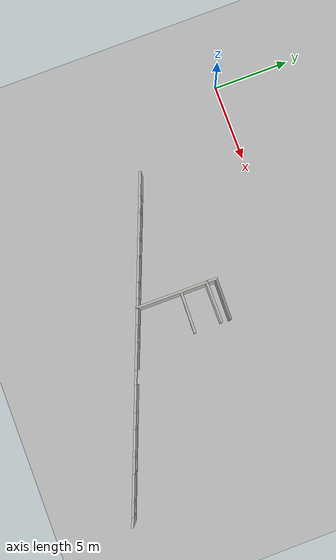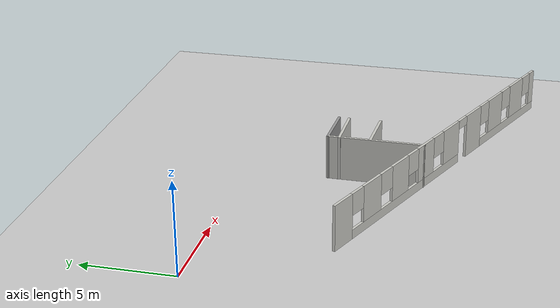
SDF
<sdf version="1.6">
 <world name="default">
  <model name="ground_plane">
   <static>1</static>
   <link name="link">
    <collision name="collision">
     <geometry><plane><normal>0 0 1</normal><size>100 100</size></plane></geometry>
     <surface><friction><ode><mu>100</mu><mu2>50</mu2></ode></friction></surface>
    </collision>
    <visual name="visual">
     <cast_shadows>0</cast_shadows>
     <geometry><plane><normal>0 0 1</normal><size>100 100</size></plane></geometry>
     <material>
      <script><uri>file://media/materials/scripts/gazebo.material</uri><name>Gazebo/Grey</name></script>
     </material>
    </visual>
   </link>
  </model>
  <model name="Erle Office">
   <link name="Wall_43">
    <pose>3.86583 -5.79896 0 0 0 -0.374453</pose>
    <visual name="Wall_43_Visual_0">
     <pose>-10.1624 0 1.25 0 -0 0</pose>
     <geometry><box><size>1.55263 0.15 2.5</size></box></geometry>
     <material>
      <script><uri>file://media/materials/scripts/gazebo.material</uri><name>Gazebo/CeilingTiled</name></script>
      <ambient>1 1 1 1</ambient>
      <diffuse>1 1 1 1</diffuse>
      <specular>0 0 0 1</specular>
      <emissive>0 0 0 1</emissive>
     </material>
    </visual>
    <visual name="Wall_43_Visual_1">
     <pose>3.20612 0 1.25 0 -0 0</pose>
     <geometry><box><size>1.69454 0.15 2.5</size></box></geometry>
     <material>
      <script><uri>file://media/materials/scripts/gazebo.material</uri><name>Gazebo/CeilingTiled</name></script>
      <ambient>1 1 1 1</ambient>
      <diffuse>1 1 1 1</diffuse>
      <specular>0 0 0 1</specular>
      <emissive>0 0 0 1</emissive>
     </material>
    </visual>
    <visual name="Wall_43_Visual_2">
     <pose>-3.96361 0 0.25 0 -0 0</pose>
     <geometry><box><size>10.8449 0.15 0.5</size></box></geometry>
     <material>
      <script><uri>file://media/materials/scripts/gazebo.material</uri><name>Gazebo/CeilingTiled</name></script>
      <ambient>1 1 1 1</ambient>
      <diffuse>1 1 1 1</diffuse>
      <specular>0 0 0 1</specular>
      <emissive>0 0 0 1</emissive>
     </material>
    </visual>
    <visual name="Wall_43_Visual_3">
     <pose>7.49605 0 0.25 0 -0 0</pose>
     <geometry><box><size>6.88531 0.15 0.5</size></box></geometry>
     <material>
      <script><uri>file://media/materials/scripts/gazebo.material</uri><name>Gazebo/CeilingTiled</name></script>
      <ambient>1 1 1 1</ambient>
      <diffuse>1 1 1 1</diffuse>
      <specular>0 0 0 1</specular>
      <emissive>0 0 0 1</emissive>
     </material>
    </visual>
    <visual name="Wall_43_Visual_4">
     <pose>-7.53154 0 1.5 0 -0 0</pose>
     <geometry><box><size>1.64771 0.15 2</size></box></geometry>
     <material>
      <script><uri>file://media/materials/scripts/gazebo.material</uri><name>Gazebo/CeilingTiled</name></script>
      <ambient>1 1 1 1</ambient>
      <diffuse>1 1 1 1</diffuse>
      <specular>0 0 0 1</specular>
      <emissive>0 0 0 1</emissive>
     </material>
    </visual>
    <visual name="Wall_43_Visual_5">
     <pose>-4.80033 0 1.5 0 -0 0</pose>
     <geometry><box><size>1.63169 0.15 2</size></box></geometry>
     <material>
      <script><uri>file://media/materials/scripts/gazebo.material</uri><name>Gazebo/CeilingTiled</name></script>
      <ambient>1 1 1 1</ambient>
      <diffuse>1 1 1 1</diffuse>
      <specular>0 0 0 1</specular>
      <emissive>0 0 0 1</emissive>
     </material>
    </visual>
    <visual name="Wall_43_Visual_6">
     <pose>-2.15402 0 1.5 0 -0 0</pose>
     <geometry><box><size>1.65041 0.15 2</size></box></geometry>
     <material>
      <script><uri>file://media/materials/scripts/gazebo.material</uri><name>Gazebo/CeilingTiled</name></script>
      <ambient>1 1 1 1</ambient>
      <diffuse>1 1 1 1</diffuse>
      <specular>0 0 0 1</specular>
      <emissive>0 0 0 1</emissive>
     </material>
    </visual>
    <visual name="Wall_43_Visual_7">
     <pose>0.599732 0 1.5 0 -0 0</pose>
     <geometry><box><size>1.71823 0.15 2</size></box></geometry>
     <material>
      <script><uri>file://media/materials/scripts/gazebo.material</uri><name>Gazebo/CeilingTiled</name></script>
      <ambient>1 1 1 1</ambient>
      <diffuse>1 1 1 1</diffuse>
      <specular>0 0 0 1</specular>
      <emissive>0 0 0 1</emissive>
     </material>
    </visual>
    <visual name="Wall_43_Visual_8">
     <pose>0.599732 0 1.5 0 -0 0</pose>
     <geometry><box><size>1.71823 0.15 2</size></box></geometry>
     <material>
      <script><uri>file://media/materials/scripts/gazebo.material</uri><name>Gazebo/CeilingTiled</name></script>
      <ambient>1 1 1 1</ambient>
      <diffuse>1 1 1 1</diffuse>
      <specular>0 0 0 1</specular>
      <emissive>0 0 0 1</emissive>
     </material>
    </visual>
    <visual name="Wall_43_Visual_9">
     <pose>5.8785 0 1.5 0 -0 0</pose>
     <geometry><box><size>1.66913 0.15 2</size></box></geometry>
     <material>
      <script><uri>file://media/materials/scripts/gazebo.material</uri><name>Gazebo/CeilingTiled</name></script>
      <ambient>1 1 1 1</ambient>
      <diffuse>1 1 1 1</diffuse>
      <specular>0 0 0 1</specular>
      <emissive>0 0 0 1</emissive>
     </material>
    </visual>
    <visual name="Wall_43_Visual_10">
     <pose>8.58432 0 1.5 0 -0 0</pose>
     <geometry><box><size>1.67182 0.15 2</size></box></geometry>
     <material>
      <script><uri>file://media/materials/scripts/gazebo.material</uri><name>Gazebo/CeilingTiled</name></script>
      <ambient>1 1 1 1</ambient>
      <diffuse>1 1 1 1</diffuse>
      <specular>0 0 0 1</specular>
      <emissive>0 0 0 1</emissive>
     </material>
    </visual>
    <visual name="Wall_43_Visual_11">
     <pose>10.645 0 1.5 0 -0 0</pose>
     <geometry><box><size>0.58743 0.15 2</size></box></geometry>
     <material>
      <script><uri>file://media/materials/scripts/gazebo.material</uri><name>Gazebo/CeilingTiled</name></script>
      <ambient>1 1 1 1</ambient>
      <diffuse>1 1 1 1</diffuse>
      <specular>0 0 0 1</specular>
      <emissive>0 0 0 1</emissive>
     </material>
    </visual>
    <visual name="Wall_43_Visual_13">
     <pose>4.54867 0 1.9 0 -0 0</pose>
     <geometry><box><size>0.990549 0.15 1.2</size></box></geometry>
     <material>
      <script><uri>file://media/materials/scripts/gazebo.material</uri><name>Gazebo/CeilingTiled</name></script>
      <ambient>1 1 1 1</ambient>
      <diffuse>1 1 1 1</diffuse>
      <specular>0 0 0 1</specular>
      <emissive>0 0 0 1</emissive>
     </material>
    </visual>
    <visual name="Wall_43_Visual_12">
     <pose>-8.87074 0 1.9 0 -0 0</pose>
     <geometry><box><size>1.03068 0.15 1.2</size></box></geometry>
     <material>
      <script><uri>file://media/materials/scripts/gazebo.material</uri><name>Gazebo/CeilingTiled</name></script>
      <ambient>1 1 1 1</ambient>
      <diffuse>1 1 1 1</diffuse>
      <specular>0 0 0 1</specular>
      <emissive>0 0 0 1</emissive>
     </material>
    </visual>
    <visual name="Wall_43_Visual_14">
     <pose>-6.16193 0 1.9 0 -0 0</pose>
     <geometry><box><size>1.0915 0.15 1.2</size></box></geometry>
     <material>
      <script><uri>file://media/materials/scripts/gazebo.material</uri><name>Gazebo/CeilingTiled</name></script>
      <ambient>1 1 1 1</ambient>
      <diffuse>1 1 1 1</diffuse>
      <specular>0 0 0 1</specular>
      <emissive>0 0 0 1</emissive>
     </material>
    </visual>
    <visual name="Wall_43_Visual_15">
     <pose>-3.48186 0 1.9 0 -0 0</pose>
     <geometry><box><size>1.00526 0.15 1.2</size></box></geometry>
     <material>
      <script><uri>file://media/materials/scripts/gazebo.material</uri><name>Gazebo/CeilingTiled</name></script>
      <ambient>1 1 1 1</ambient>
      <diffuse>1 1 1 1</diffuse>
      <specular>0 0 0 1</specular>
      <emissive>0 0 0 1</emissive>
     </material>
    </visual>
    <visual name="Wall_43_Visual_16">
     <pose>-0.794103 0 1.9 0 -0 0</pose>
     <geometry><box><size>1.06943 0.15 1.2</size></box></geometry>
     <material>
      <script><uri>file://media/materials/scripts/gazebo.material</uri><name>Gazebo/CeilingTiled</name></script>
      <ambient>1 1 1 1</ambient>
      <diffuse>1 1 1 1</diffuse>
      <specular>0 0 0 1</specular>
      <emissive>0 0 0 1</emissive>
     </material>
    </visual>
    <visual name="Wall_43_Visual_17">
     <pose>7.23074 0 1.9 0 -0 0</pose>
     <geometry><box><size>1.03535 0.15 1.2</size></box></geometry>
     <material>
      <script><uri>file://media/materials/scripts/gazebo.material</uri><name>Gazebo/CeilingTiled</name></script>
      <ambient>1 1 1 1</ambient>
      <diffuse>1 1 1 1</diffuse>
      <specular>0 0 0 1</specular>
      <emissive>0 0 0 1</emissive>
     </material>
    </visual>
    <visual name="Wall_43_Visual_18">
     <pose>9.88575 0 1.9 0 -0 0</pose>
     <geometry><box><size>0.931039 0.15 1.2</size></box></geometry>
     <material>
      <script><uri>file://media/materials/scripts/gazebo.material</uri><name>Gazebo/CeilingTiled</name></script>
      <ambient>1 1 1 1</ambient>
      <diffuse>1 1 1 1</diffuse>
      <specular>0 0 0 1</specular>
      <emissive>0 0 0 1</emissive>
     </material>
    </visual>
    <visual name="Wall_43_Visual_19">
     <pose>1.90885 0 2.25 0 -0 0</pose>
     <geometry><box><size>0.9 0.15 0.5</size></box></geometry>
     <material>
      <script><uri>file://media/materials/scripts/gazebo.material</uri><name>Gazebo/CeilingTiled</name></script>
      <ambient>1 1 1 1</ambient>
      <diffuse>1 1 1 1</diffuse>
      <specular>0 0 0 1</specular>
      <emissive>0 0 0 1</emissive>
     </material>
    </visual>
    <visual name="Wall_43_Visual_20">
     <pose>1.90885 0 2.25 0 -0 0</pose>
     <geometry><box><size>0.9 0.15 0.5</size></box></geometry>
     <material>
      <script><uri>file://media/materials/scripts/gazebo.material</uri><name>Gazebo/CeilingTiled</name></script>
      <ambient>1 1 1 1</ambient>
      <diffuse>1 1 1 1</diffuse>
      <specular>0 0 0 1</specular>
      <emissive>0 0 0 1</emissive>
     </material>
    </visual>
    <collision name="Wall_43_Collision_0">
     <pose>-10.1624 0 1.25 0 -0 0</pose>
     <geometry><box><size>1.55263 0.15 2.5</size></box></geometry>
     <surface>
      <friction>
       <ode><mu>1</mu><mu2>1</mu2><fdir1>0 0 0</fdir1><slip1>0</slip1><slip2>0</slip2></ode>
       <torsional>
        <coefficient>1</coefficient>
        <patch_radius>0</patch_radius>
        <surface_radius>0</surface_radius>
        <use_patch_radius>1</use_patch_radius>
        <ode><slip>0</slip></ode>
       </torsional>
      </friction>
      <bounce><restitution_coefficient>0</restitution_coefficient><threshold>1e+06</threshold></bounce>
      <contact>
       <collide_without_contact>0</collide_without_contact>
       <collide_without_contact_bitmask>1</collide_without_contact_bitmask>
       <collide_bitmask>1</collide_bitmask>
       <ode>
        <soft_cfm>0</soft_cfm>
        <soft_erp>0.2</soft_erp>
        <kp>1e+13</kp>
        <kd>1</kd>
        <max_vel>0.01</max_vel>
        <min_depth>0</min_depth>
       </ode>
       <bullet>
        <split_impulse>1</split_impulse>
        <split_impulse_penetration_threshold>-0.01</split_impulse_penetration_threshold>
        <soft_cfm>0</soft_cfm>
        <soft_erp>0.2</soft_erp>
        <kp>1e+13</kp>
        <kd>1</kd>
       </bullet>
      </contact>
     </surface>
    </collision>
    <collision name="Wall_43_Collision_2">
     <pose>-3.96361 0 0.25 0 -0 0</pose>
     <geometry><box><size>10.8449 0.15 0.5</size></box></geometry>
     <surface>
      <friction>
       <ode><mu>1</mu><mu2>1</mu2><fdir1>0 0 0</fdir1><slip1>0</slip1><slip2>0</slip2></ode>
       <torsional>
        <coefficient>1</coefficient>
        <patch_radius>0</patch_radius>
        <surface_radius>0</surface_radius>
        <use_patch_radius>1</use_patch_radius>
        <ode><slip>0</slip></ode>
       </torsional>
      </friction>
      <bounce><restitution_coefficient>0</restitution_coefficient><threshold>1e+06</threshold></bounce>
      <contact>
       <collide_without_contact>0</collide_without_contact>
       <collide_without_contact_bitmask>1</collide_without_contact_bitmask>
       <collide_bitmask>1</collide_bitmask>
       <ode>
        <soft_cfm>0</soft_cfm>
        <soft_erp>0.2</soft_erp>
        <kp>1e+13</kp>
        <kd>1</kd>
        <max_vel>0.01</max_vel>
        <min_depth>0</min_depth>
       </ode>
       <bullet>
        <split_impulse>1</split_impulse>
        <split_impulse_penetration_threshold>-0.01</split_impulse_penetration_threshold>
        <soft_cfm>0</soft_cfm>
        <soft_erp>0.2</soft_erp>
        <kp>1e+13</kp>
        <kd>1</kd>
       </bullet>
      </contact>
     </surface>
    </collision>
    <collision name="Wall_43_Collision_1">
     <pose>3.20612 0 1.25 0 -0 0</pose>
     <geometry><box><size>1.69454 0.15 2.5</size></box></geometry>
     <surface>
      <friction>
       <ode><mu>1</mu><mu2>1</mu2><fdir1>0 0 0</fdir1><slip1>0</slip1><slip2>0</slip2></ode>
       <torsional>
        <coefficient>1</coefficient>
        <patch_radius>0</patch_radius>
        <surface_radius>0</surface_radius>
        <use_patch_radius>1</use_patch_radius>
        <ode><slip>0</slip></ode>
       </torsional>
      </friction>
      <bounce><restitution_coefficient>0</restitution_coefficient><threshold>1e+06</threshold></bounce>
      <contact>
       <collide_without_contact>0</collide_without_contact>
       <collide_without_contact_bitmask>1</collide_without_contact_bitmask>
       <collide_bitmask>1</collide_bitmask>
       <ode>
        <soft_cfm>0</soft_cfm>
        <soft_erp>0.2</soft_erp>
        <kp>1e+13</kp>
        <kd>1</kd>
        <max_vel>0.01</max_vel>
        <min_depth>0</min_depth>
       </ode>
       <bullet>
        <split_impulse>1</split_impulse>
        <split_impulse_penetration_threshold>-0.01</split_impulse_penetration_threshold>
        <soft_cfm>0</soft_cfm>
        <soft_erp>0.2</soft_erp>
        <kp>1e+13</kp>
        <kd>1</kd>
       </bullet>
      </contact>
     </surface>
    </collision>
    <collision name="Wall_43_Collision_3">
     <pose>7.49605 0 0.25 0 -0 0</pose>
     <geometry><box><size>6.88531 0.15 0.5</size></box></geometry>
     <surface>
      <friction>
       <ode><mu>1</mu><mu2>1</mu2><fdir1>0 0 0</fdir1><slip1>0</slip1><slip2>0</slip2></ode>
       <torsional>
        <coefficient>1</coefficient>
        <patch_radius>0</patch_radius>
        <surface_radius>0</surface_radius>
        <use_patch_radius>1</use_patch_radius>
        <ode><slip>0</slip></ode>
       </torsional>
      </friction>
      <bounce><restitution_coefficient>0</restitution_coefficient><threshold>1e+06</threshold></bounce>
      <contact>
       <collide_without_contact>0</collide_without_contact>
       <collide_without_contact_bitmask>1</collide_without_contact_bitmask>
       <collide_bitmask>1</collide_bitmask>
       <ode>
        <soft_cfm>0</soft_cfm>
        <soft_erp>0.2</soft_erp>
        <kp>1e+13</kp>
        <kd>1</kd>
        <max_vel>0.01</max_vel>
        <min_depth>0</min_depth>
       </ode>
       <bullet>
        <split_impulse>1</split_impulse>
        <split_impulse_penetration_threshold>-0.01</split_impulse_penetration_threshold>
        <soft_cfm>0</soft_cfm>
        <soft_erp>0.2</soft_erp>
        <kp>1e+13</kp>
        <kd>1</kd>
       </bullet>
      </contact>
     </surface>
    </collision>
    <collision name="Wall_43_Collision_5">
     <pose>-4.80033 0 1.5 0 -0 0</pose>
     <geometry><box><size>1.63169 0.15 2</size></box></geometry>
     <surface>
      <friction>
       <ode><mu>1</mu><mu2>1</mu2><fdir1>0 0 0</fdir1><slip1>0</slip1><slip2>0</slip2></ode>
       <torsional>
        <coefficient>1</coefficient>
        <patch_radius>0</patch_radius>
        <surface_radius>0</surface_radius>
        <use_patch_radius>1</use_patch_radius>
        <ode><slip>0</slip></ode>
       </torsional>
      </friction>
      <bounce><restitution_coefficient>0</restitution_coefficient><threshold>1e+06</threshold></bounce>
      <contact>
       <collide_without_contact>0</collide_without_contact>
       <collide_without_contact_bitmask>1</collide_without_contact_bitmask>
       <collide_bitmask>1</collide_bitmask>
       <ode>
        <soft_cfm>0</soft_cfm>
        <soft_erp>0.2</soft_erp>
        <kp>1e+13</kp>
        <kd>1</kd>
        <max_vel>0.01</max_vel>
        <min_depth>0</min_depth>
       </ode>
       <bullet>
        <split_impulse>1</split_impulse>
        <split_impulse_penetration_threshold>-0.01</split_impulse_penetration_threshold>
        <soft_cfm>0</soft_cfm>
        <soft_erp>0.2</soft_erp>
        <kp>1e+13</kp>
        <kd>1</kd>
       </bullet>
      </contact>
     </surface>
    </collision>
    <collision name="Wall_43_Collision_8">
     <pose>0.599732 0 1.5 0 -0 0</pose>
     <geometry><box><size>1.71823 0.15 2</size></box></geometry>
     <surface>
      <friction>
       <ode><mu>1</mu><mu2>1</mu2><fdir1>0 0 0</fdir1><slip1>0</slip1><slip2>0</slip2></ode>
       <torsional>
        <coefficient>1</coefficient>
        <patch_radius>0</patch_radius>
        <surface_radius>0</surface_radius>
        <use_patch_radius>1</use_patch_radius>
        <ode><slip>0</slip></ode>
       </torsional>
      </friction>
      <bounce><restitution_coefficient>0</restitution_coefficient><threshold>1e+06</threshold></bounce>
      <contact>
       <collide_without_contact>0</collide_without_contact>
       <collide_without_contact_bitmask>1</collide_without_contact_bitmask>
       <collide_bitmask>1</collide_bitmask>
       <ode>
        <soft_cfm>0</soft_cfm>
        <soft_erp>0.2</soft_erp>
        <kp>1e+13</kp>
        <kd>1</kd>
        <max_vel>0.01</max_vel>
        <min_depth>0</min_depth>
       </ode>
       <bullet>
        <split_impulse>1</split_impulse>
        <split_impulse_penetration_threshold>-0.01</split_impulse_penetration_threshold>
        <soft_cfm>0</soft_cfm>
        <soft_erp>0.2</soft_erp>
        <kp>1e+13</kp>
        <kd>1</kd>
       </bullet>
      </contact>
     </surface>
    </collision>
    <collision name="Wall_43_Collision_4">
     <pose>-7.53154 0 1.5 0 -0 0</pose>
     <geometry><box><size>1.64771 0.15 2</size></box></geometry>
     <surface>
      <friction>
       <ode><mu>1</mu><mu2>1</mu2><fdir1>0 0 0</fdir1><slip1>0</slip1><slip2>0</slip2></ode>
       <torsional>
        <coefficient>1</coefficient>
        <patch_radius>0</patch_radius>
        <surface_radius>0</surface_radius>
        <use_patch_radius>1</use_patch_radius>
        <ode><slip>0</slip></ode>
       </torsional>
      </friction>
      <bounce><restitution_coefficient>0</restitution_coefficient><threshold>1e+06</threshold></bounce>
      <contact>
       <collide_without_contact>0</collide_without_contact>
       <collide_without_contact_bitmask>1</collide_without_contact_bitmask>
       <collide_bitmask>1</collide_bitmask>
       <ode>
        <soft_cfm>0</soft_cfm>
        <soft_erp>0.2</soft_erp>
        <kp>1e+13</kp>
        <kd>1</kd>
        <max_vel>0.01</max_vel>
        <min_depth>0</min_depth>
       </ode>
       <bullet>
        <split_impulse>1</split_impulse>
        <split_impulse_penetration_threshold>-0.01</split_impulse_penetration_threshold>
        <soft_cfm>0</soft_cfm>
        <soft_erp>0.2</soft_erp>
        <kp>1e+13</kp>
        <kd>1</kd>
       </bullet>
      </contact>
     </surface>
    </collision>
    <collision name="Wall_43_Collision_10">
     <pose>8.58432 0 1.5 0 -0 0</pose>
     <geometry><box><size>1.67182 0.15 2</size></box></geometry>
     <surface>
      <friction>
       <ode><mu>1</mu><mu2>1</mu2><fdir1>0 0 0</fdir1><slip1>0</slip1><slip2>0</slip2></ode>
       <torsional>
        <coefficient>1</coefficient>
        <patch_radius>0</patch_radius>
        <surface_radius>0</surface_radius>
        <use_patch_radius>1</use_patch_radius>
        <ode><slip>0</slip></ode>
       </torsional>
      </friction>
      <bounce><restitution_coefficient>0</restitution_coefficient><threshold>1e+06</threshold></bounce>
      <contact>
       <collide_without_contact>0</collide_without_contact>
       <collide_without_contact_bitmask>1</collide_without_contact_bitmask>
       <collide_bitmask>1</collide_bitmask>
       <ode>
        <soft_cfm>0</soft_cfm>
        <soft_erp>0.2</soft_erp>
        <kp>1e+13</kp>
        <kd>1</kd>
        <max_vel>0.01</max_vel>
        <min_depth>0</min_depth>
       </ode>
       <bullet>
        <split_impulse>1</split_impulse>
        <split_impulse_penetration_threshold>-0.01</split_impulse_penetration_threshold>
        <soft_cfm>0</soft_cfm>
        <soft_erp>0.2</soft_erp>
        <kp>1e+13</kp>
        <kd>1</kd>
       </bullet>
      </contact>
     </surface>
    </collision>
    <collision name="Wall_43_Collision_6">
     <pose>-2.15402 0 1.5 0 -0 0</pose>
     <geometry><box><size>1.65041 0.15 2</size></box></geometry>
     <surface>
      <friction>
       <ode><mu>1</mu><mu2>1</mu2><fdir1>0 0 0</fdir1><slip1>0</slip1><slip2>0</slip2></ode>
       <torsional>
        <coefficient>1</coefficient>
        <patch_radius>0</patch_radius>
        <surface_radius>0</surface_radius>
        <use_patch_radius>1</use_patch_radius>
        <ode><slip>0</slip></ode>
       </torsional>
      </friction>
      <bounce><restitution_coefficient>0</restitution_coefficient><threshold>1e+06</threshold></bounce>
      <contact>
       <collide_without_contact>0</collide_without_contact>
       <collide_without_contact_bitmask>1</collide_without_contact_bitmask>
       <collide_bitmask>1</collide_bitmask>
       <ode>
        <soft_cfm>0</soft_cfm>
        <soft_erp>0.2</soft_erp>
        <kp>1e+13</kp>
        <kd>1</kd>
        <max_vel>0.01</max_vel>
        <min_depth>0</min_depth>
       </ode>
       <bullet>
        <split_impulse>1</split_impulse>
        <split_impulse_penetration_threshold>-0.01</split_impulse_penetration_threshold>
        <soft_cfm>0</soft_cfm>
        <soft_erp>0.2</soft_erp>
        <kp>1e+13</kp>
        <kd>1</kd>
       </bullet>
      </contact>
     </surface>
    </collision>
    <collision name="Wall_43_Collision_7">
     <pose>0.599732 0 1.5 0 -0 0</pose>
     <geometry><box><size>1.71823 0.15 2</size></box></geometry>
     <surface>
      <friction>
       <ode><mu>1</mu><mu2>1</mu2><fdir1>0 0 0</fdir1><slip1>0</slip1><slip2>0</slip2></ode>
       <torsional>
        <coefficient>1</coefficient>
        <patch_radius>0</patch_radius>
        <surface_radius>0</surface_radius>
        <use_patch_radius>1</use_patch_radius>
        <ode><slip>0</slip></ode>
       </torsional>
      </friction>
      <bounce><restitution_coefficient>0</restitution_coefficient><threshold>1e+06</threshold></bounce>
      <contact>
       <collide_without_contact>0</collide_without_contact>
       <collide_without_contact_bitmask>1</collide_without_contact_bitmask>
       <collide_bitmask>1</collide_bitmask>
       <ode>
        <soft_cfm>0</soft_cfm>
        <soft_erp>0.2</soft_erp>
        <kp>1e+13</kp>
        <kd>1</kd>
        <max_vel>0.01</max_vel>
        <min_depth>0</min_depth>
       </ode>
       <bullet>
        <split_impulse>1</split_impulse>
        <split_impulse_penetration_threshold>-0.01</split_impulse_penetration_threshold>
        <soft_cfm>0</soft_cfm>
        <soft_erp>0.2</soft_erp>
        <kp>1e+13</kp>
        <kd>1</kd>
       </bullet>
      </contact>
     </surface>
    </collision>
    <collision name="Wall_43_Collision_11">
     <pose>10.645 0 1.5 0 -0 0</pose>
     <geometry><box><size>0.58743 0.15 2</size></box></geometry>
     <surface>
      <friction>
       <ode><mu>1</mu><mu2>1</mu2><fdir1>0 0 0</fdir1><slip1>0</slip1><slip2>0</slip2></ode>
       <torsional>
        <coefficient>1</coefficient>
        <patch_radius>0</patch_radius>
        <surface_radius>0</surface_radius>
        <use_patch_radius>1</use_patch_radius>
        <ode><slip>0</slip></ode>
       </torsional>
      </friction>
      <bounce><restitution_coefficient>0</restitution_coefficient><threshold>1e+06</threshold></bounce>
      <contact>
       <collide_without_contact>0</collide_without_contact>
       <collide_without_contact_bitmask>1</collide_without_contact_bitmask>
       <collide_bitmask>1</collide_bitmask>
       <ode>
        <soft_cfm>0</soft_cfm>
        <soft_erp>0.2</soft_erp>
        <kp>1e+13</kp>
        <kd>1</kd>
        <max_vel>0.01</max_vel>
        <min_depth>0</min_depth>
       </ode>
       <bullet>
        <split_impulse>1</split_impulse>
        <split_impulse_penetration_threshold>-0.01</split_impulse_penetration_threshold>
        <soft_cfm>0</soft_cfm>
        <soft_erp>0.2</soft_erp>
        <kp>1e+13</kp>
        <kd>1</kd>
       </bullet>
      </contact>
     </surface>
    </collision>
    <collision name="Wall_43_Collision_12">
     <pose>-8.87074 0 1.9 0 -0 0</pose>
     <geometry><box><size>1.03068 0.15 1.2</size></box></geometry>
     <surface>
      <friction>
       <ode><mu>1</mu><mu2>1</mu2><fdir1>0 0 0</fdir1><slip1>0</slip1><slip2>0</slip2></ode>
       <torsional>
        <coefficient>1</coefficient>
        <patch_radius>0</patch_radius>
        <surface_radius>0</surface_radius>
        <use_patch_radius>1</use_patch_radius>
        <ode><slip>0</slip></ode>
       </torsional>
      </friction>
      <bounce><restitution_coefficient>0</restitution_coefficient><threshold>1e+06</threshold></bounce>
      <contact>
       <collide_without_contact>0</collide_without_contact>
       <collide_without_contact_bitmask>1</collide_without_contact_bitmask>
       <collide_bitmask>1</collide_bitmask>
       <ode>
        <soft_cfm>0</soft_cfm>
        <soft_erp>0.2</soft_erp>
        <kp>1e+13</kp>
        <kd>1</kd>
        <max_vel>0.01</max_vel>
        <min_depth>0</min_depth>
       </ode>
       <bullet>
        <split_impulse>1</split_impulse>
        <split_impulse_penetration_threshold>-0.01</split_impulse_penetration_threshold>
        <soft_cfm>0</soft_cfm>
        <soft_erp>0.2</soft_erp>
        <kp>1e+13</kp>
        <kd>1</kd>
       </bullet>
      </contact>
     </surface>
    </collision>
    <collision name="Wall_43_Collision_9">
     <pose>5.8785 0 1.5 0 -0 0</pose>
     <geometry><box><size>1.66913 0.15 2</size></box></geometry>
     <surface>
      <friction>
       <ode><mu>1</mu><mu2>1</mu2><fdir1>0 0 0</fdir1><slip1>0</slip1><slip2>0</slip2></ode>
       <torsional>
        <coefficient>1</coefficient>
        <patch_radius>0</patch_radius>
        <surface_radius>0</surface_radius>
        <use_patch_radius>1</use_patch_radius>
        <ode><slip>0</slip></ode>
       </torsional>
      </friction>
      <bounce><restitution_coefficient>0</restitution_coefficient><threshold>1e+06</threshold></bounce>
      <contact>
       <collide_without_contact>0</collide_without_contact>
       <collide_without_contact_bitmask>1</collide_without_contact_bitmask>
       <collide_bitmask>1</collide_bitmask>
       <ode>
        <soft_cfm>0</soft_cfm>
        <soft_erp>0.2</soft_erp>
        <kp>1e+13</kp>
        <kd>1</kd>
        <max_vel>0.01</max_vel>
        <min_depth>0</min_depth>
       </ode>
       <bullet>
        <split_impulse>1</split_impulse>
        <split_impulse_penetration_threshold>-0.01</split_impulse_penetration_threshold>
        <soft_cfm>0</soft_cfm>
        <soft_erp>0.2</soft_erp>
        <kp>1e+13</kp>
        <kd>1</kd>
       </bullet>
      </contact>
     </surface>
    </collision>
    <collision name="Wall_43_Collision_13">
     <pose>4.54867 0 1.9 0 -0 0</pose>
     <geometry><box><size>0.990549 0.15 1.2</size></box></geometry>
     <surface>
      <friction>
       <ode><mu>1</mu><mu2>1</mu2><fdir1>0 0 0</fdir1><slip1>0</slip1><slip2>0</slip2></ode>
       <torsional>
        <coefficient>1</coefficient>
        <patch_radius>0</patch_radius>
        <surface_radius>0</surface_radius>
        <use_patch_radius>1</use_patch_radius>
        <ode><slip>0</slip></ode>
       </torsional>
      </friction>
      <bounce><restitution_coefficient>0</restitution_coefficient><threshold>1e+06</threshold></bounce>
      <contact>
       <collide_without_contact>0</collide_without_contact>
       <collide_without_contact_bitmask>1</collide_without_contact_bitmask>
       <collide_bitmask>1</collide_bitmask>
       <ode>
        <soft_cfm>0</soft_cfm>
        <soft_erp>0.2</soft_erp>
        <kp>1e+13</kp>
        <kd>1</kd>
        <max_vel>0.01</max_vel>
        <min_depth>0</min_depth>
       </ode>
       <bullet>
        <split_impulse>1</split_impulse>
        <split_impulse_penetration_threshold>-0.01</split_impulse_penetration_threshold>
        <soft_cfm>0</soft_cfm>
        <soft_erp>0.2</soft_erp>
        <kp>1e+13</kp>
        <kd>1</kd>
       </bullet>
      </contact>
     </surface>
    </collision>
    <collision name="Wall_43_Collision_14">
     <pose>-6.16193 0 1.9 0 -0 0</pose>
     <geometry><box><size>1.0915 0.15 1.2</size></box></geometry>
     <surface>
      <friction>
       <ode><mu>1</mu><mu2>1</mu2><fdir1>0 0 0</fdir1><slip1>0</slip1><slip2>0</slip2></ode>
       <torsional>
        <coefficient>1</coefficient>
        <patch_radius>0</patch_radius>
        <surface_radius>0</surface_radius>
        <use_patch_radius>1</use_patch_radius>
        <ode><slip>0</slip></ode>
       </torsional>
      </friction>
      <bounce><restitution_coefficient>0</restitution_coefficient><threshold>1e+06</threshold></bounce>
      <contact>
       <collide_without_contact>0</collide_without_contact>
       <collide_without_contact_bitmask>1</collide_without_contact_bitmask>
       <collide_bitmask>1</collide_bitmask>
       <ode>
        <soft_cfm>0</soft_cfm>
        <soft_erp>0.2</soft_erp>
        <kp>1e+13</kp>
        <kd>1</kd>
        <max_vel>0.01</max_vel>
        <min_depth>0</min_depth>
       </ode>
       <bullet>
        <split_impulse>1</split_impulse>
        <split_impulse_penetration_threshold>-0.01</split_impulse_penetration_threshold>
        <soft_cfm>0</soft_cfm>
        <soft_erp>0.2</soft_erp>
        <kp>1e+13</kp>
        <kd>1</kd>
       </bullet>
      </contact>
     </surface>
    </collision>
    <collision name="Wall_43_Collision_15">
     <pose>-3.48186 0 1.9 0 -0 0</pose>
     <geometry><box><size>1.00526 0.15 1.2</size></box></geometry>
     <surface>
      <friction>
       <ode><mu>1</mu><mu2>1</mu2><fdir1>0 0 0</fdir1><slip1>0</slip1><slip2>0</slip2></ode>
       <torsional>
        <coefficient>1</coefficient>
        <patch_radius>0</patch_radius>
        <surface_radius>0</surface_radius>
        <use_patch_radius>1</use_patch_radius>
        <ode><slip>0</slip></ode>
       </torsional>
      </friction>
      <bounce><restitution_coefficient>0</restitution_coefficient><threshold>1e+06</threshold></bounce>
      <contact>
       <collide_without_contact>0</collide_without_contact>
       <collide_without_contact_bitmask>1</collide_without_contact_bitmask>
       <collide_bitmask>1</collide_bitmask>
       <ode>
        <soft_cfm>0</soft_cfm>
        <soft_erp>0.2</soft_erp>
        <kp>1e+13</kp>
        <kd>1</kd>
        <max_vel>0.01</max_vel>
        <min_depth>0</min_depth>
       </ode>
       <bullet>
        <split_impulse>1</split_impulse>
        <split_impulse_penetration_threshold>-0.01</split_impulse_penetration_threshold>
        <soft_cfm>0</soft_cfm>
        <soft_erp>0.2</soft_erp>
        <kp>1e+13</kp>
        <kd>1</kd>
       </bullet>
      </contact>
     </surface>
    </collision>
    <collision name="Wall_43_Collision_16">
     <pose>-0.794103 0 1.9 0 -0 0</pose>
     <geometry><box><size>1.06943 0.15 1.2</size></box></geometry>
     <surface>
      <friction>
       <ode><mu>1</mu><mu2>1</mu2><fdir1>0 0 0</fdir1><slip1>0</slip1><slip2>0</slip2></ode>
       <torsional>
        <coefficient>1</coefficient>
        <patch_radius>0</patch_radius>
        <surface_radius>0</surface_radius>
        <use_patch_radius>1</use_patch_radius>
        <ode><slip>0</slip></ode>
       </torsional>
      </friction>
      <bounce><restitution_coefficient>0</restitution_coefficient><threshold>1e+06</threshold></bounce>
      <contact>
       <collide_without_contact>0</collide_without_contact>
       <collide_without_contact_bitmask>1</collide_without_contact_bitmask>
       <collide_bitmask>1</collide_bitmask>
       <ode>
        <soft_cfm>0</soft_cfm>
        <soft_erp>0.2</soft_erp>
        <kp>1e+13</kp>
        <kd>1</kd>
        <max_vel>0.01</max_vel>
        <min_depth>0</min_depth>
       </ode>
       <bullet>
        <split_impulse>1</split_impulse>
        <split_impulse_penetration_threshold>-0.01</split_impulse_penetration_threshold>
        <soft_cfm>0</soft_cfm>
        <soft_erp>0.2</soft_erp>
        <kp>1e+13</kp>
        <kd>1</kd>
       </bullet>
      </contact>
     </surface>
    </collision>
    <collision name="Wall_43_Collision_18">
     <pose>9.88575 0 1.9 0 -0 0</pose>
     <geometry><box><size>0.931039 0.15 1.2</size></box></geometry>
     <surface>
      <friction>
       <ode><mu>1</mu><mu2>1</mu2><fdir1>0 0 0</fdir1><slip1>0</slip1><slip2>0</slip2></ode>
       <torsional>
        <coefficient>1</coefficient>
        <patch_radius>0</patch_radius>
        <surface_radius>0</surface_radius>
        <use_patch_radius>1</use_patch_radius>
        <ode><slip>0</slip></ode>
       </torsional>
      </friction>
      <bounce><restitution_coefficient>0</restitution_coefficient><threshold>1e+06</threshold></bounce>
      <contact>
       <collide_without_contact>0</collide_without_contact>
       <collide_without_contact_bitmask>1</collide_without_contact_bitmask>
       <collide_bitmask>1</collide_bitmask>
       <ode>
        <soft_cfm>0</soft_cfm>
        <soft_erp>0.2</soft_erp>
        <kp>1e+13</kp>
        <kd>1</kd>
        <max_vel>0.01</max_vel>
        <min_depth>0</min_depth>
       </ode>
       <bullet>
        <split_impulse>1</split_impulse>
        <split_impulse_penetration_threshold>-0.01</split_impulse_penetration_threshold>
        <soft_cfm>0</soft_cfm>
        <soft_erp>0.2</soft_erp>
        <kp>1e+13</kp>
        <kd>1</kd>
       </bullet>
      </contact>
     </surface>
    </collision>
    <collision name="Wall_43_Collision_19">
     <pose>1.90885 0 2.25 0 -0 0</pose>
     <geometry><box><size>0.9 0.15 0.5</size></box></geometry>
     <surface>
      <friction>
       <ode><mu>1</mu><mu2>1</mu2><fdir1>0 0 0</fdir1><slip1>0</slip1><slip2>0</slip2></ode>
       <torsional>
        <coefficient>1</coefficient>
        <patch_radius>0</patch_radius>
        <surface_radius>0</surface_radius>
        <use_patch_radius>1</use_patch_radius>
        <ode><slip>0</slip></ode>
       </torsional>
      </friction>
      <bounce><restitution_coefficient>0</restitution_coefficient><threshold>1e+06</threshold></bounce>
      <contact>
       <collide_without_contact>0</collide_without_contact>
       <collide_without_contact_bitmask>1</collide_without_contact_bitmask>
       <collide_bitmask>1</collide_bitmask>
       <ode>
        <soft_cfm>0</soft_cfm>
        <soft_erp>0.2</soft_erp>
        <kp>1e+13</kp>
        <kd>1</kd>
        <max_vel>0.01</max_vel>
        <min_depth>0</min_depth>
       </ode>
       <bullet>
        <split_impulse>1</split_impulse>
        <split_impulse_penetration_threshold>-0.01</split_impulse_penetration_threshold>
        <soft_cfm>0</soft_cfm>
        <soft_erp>0.2</soft_erp>
        <kp>1e+13</kp>
        <kd>1</kd>
       </bullet>
      </contact>
     </surface>
    </collision>
    <collision name="Wall_43_Collision_17">
     <pose>7.23074 0 1.9 0 -0 0</pose>
     <geometry><box><size>1.03535 0.15 1.2</size></box></geometry>
     <surface>
      <friction>
       <ode><mu>1</mu><mu2>1</mu2><fdir1>0 0 0</fdir1><slip1>0</slip1><slip2>0</slip2></ode>
       <torsional>
        <coefficient>1</coefficient>
        <patch_radius>0</patch_radius>
        <surface_radius>0</surface_radius>
        <use_patch_radius>1</use_patch_radius>
        <ode><slip>0</slip></ode>
       </torsional>
      </friction>
      <bounce><restitution_coefficient>0</restitution_coefficient><threshold>1e+06</threshold></bounce>
      <contact>
       <collide_without_contact>0</collide_without_contact>
       <collide_without_contact_bitmask>1</collide_without_contact_bitmask>
       <collide_bitmask>1</collide_bitmask>
       <ode>
        <soft_cfm>0</soft_cfm>
        <soft_erp>0.2</soft_erp>
        <kp>1e+13</kp>
        <kd>1</kd>
        <max_vel>0.01</max_vel>
        <min_depth>0</min_depth>
       </ode>
       <bullet>
        <split_impulse>1</split_impulse>
        <split_impulse_penetration_threshold>-0.01</split_impulse_penetration_threshold>
        <soft_cfm>0</soft_cfm>
        <soft_erp>0.2</soft_erp>
        <kp>1e+13</kp>
        <kd>1</kd>
       </bullet>
      </contact>
     </surface>
    </collision>
    <collision name="Wall_43_Collision_20">
     <pose>1.90885 0 2.25 0 -0 0</pose>
     <geometry><box><size>0.9 0.15 0.5</size></box></geometry>
     <surface>
      <friction>
       <ode><mu>1</mu><mu2>1</mu2><fdir1>0 0 0</fdir1><slip1>0</slip1><slip2>0</slip2></ode>
       <torsional>
        <coefficient>1</coefficient>
        <patch_radius>0</patch_radius>
        <surface_radius>0</surface_radius>
        <use_patch_radius>1</use_patch_radius>
        <ode><slip>0</slip></ode>
       </torsional>
      </friction>
      <bounce><restitution_coefficient>0</restitution_coefficient><threshold>1e+06</threshold></bounce>
      <contact>
       <collide_without_contact>0</collide_without_contact>
       <collide_without_contact_bitmask>1</collide_without_contact_bitmask>
       <collide_bitmask>1</collide_bitmask>
       <ode>
        <soft_cfm>0</soft_cfm>
        <soft_erp>0.2</soft_erp>
        <kp>1e+13</kp>
        <kd>1</kd>
        <max_vel>0.01</max_vel>
        <min_depth>0</min_depth>
       </ode>
       <bullet>
        <split_impulse>1</split_impulse>
        <split_impulse_penetration_threshold>-0.01</split_impulse_penetration_threshold>
        <soft_cfm>0</soft_cfm>
        <soft_erp>0.2</soft_erp>
        <kp>1e+13</kp>
        <kd>1</kd>
       </bullet>
      </contact>
     </surface>
    </collision>
   </link>
   <link name="Wall_48">
    <pose>1.6474 -2.33414 0 0 -0 1.56411</pose>
    <visual name="Wall_48_Visual">
     <pose>0 0 1.25 0 -0 0</pose>
     <geometry><box><size>5.38 0.15 2.5</size></box></geometry>
     <material>
      <script><uri>file://media/materials/scripts/gazebo.material</uri><name>Gazebo/CeilingTiled</name></script>
      <ambient>1 1 1 1</ambient>
      <diffuse>1 1 1 1</diffuse>
      <specular>0 0 0 1</specular>
      <emissive>0 0 0 1</emissive>
     </material>
    </visual>
    <collision name="Wall_48_Collision">
     <pose>0 0 1.25 0 -0 0</pose>
     <geometry><box><size>5.38 0.15 2.5</size></box></geometry>
     <surface>
      <friction>
       <ode><mu>1</mu><mu2>1</mu2><fdir1>0 0 0</fdir1><slip1>0</slip1><slip2>0</slip2></ode>
       <torsional>
        <coefficient>1</coefficient>
        <patch_radius>0</patch_radius>
        <surface_radius>0</surface_radius>
        <use_patch_radius>1</use_patch_radius>
        <ode><slip>0</slip></ode>
       </torsional>
      </friction>
      <bounce><restitution_coefficient>0</restitution_coefficient><threshold>1e+06</threshold></bounce>
      <contact>
       <collide_without_contact>0</collide_without_contact>
       <collide_without_contact_bitmask>1</collide_without_contact_bitmask>
       <collide_bitmask>1</collide_bitmask>
       <ode>
        <soft_cfm>0</soft_cfm>
        <soft_erp>0.2</soft_erp>
        <kp>1e+13</kp>
        <kd>1</kd>
        <max_vel>0.01</max_vel>
        <min_depth>0</min_depth>
       </ode>
       <bullet>
        <split_impulse>1</split_impulse>
        <split_impulse_penetration_threshold>-0.01</split_impulse_penetration_threshold>
        <soft_cfm>0</soft_cfm>
        <soft_erp>0.2</soft_erp>
        <kp>1e+13</kp>
        <kd>1</kd>
       </bullet>
      </contact>
     </surface>
    </collision>
   </link>
   <link name="Wall_49">
    <pose>2.9679 0.254387 0 0 0 -0.020132</pose>
    <visual name="Wall_49_Visual">
     <pose>0 0 1.25 0 -0 0</pose>
     <geometry><box><size>2.75655 0.15 2.5</size></box></geometry>
     <material>
      <script><uri>file://media/materials/scripts/gazebo.material</uri><name>Gazebo/Grey</name></script>
      <ambient>1 1 1 1</ambient>
      <diffuse>0.7 0.7 0.7 1</diffuse>
      <specular>0.01 0.01 0.01 1</specular>
      <emissive>0 0 0 1</emissive>
     </material>
    </visual>
    <collision name="Wall_49_Collision">
     <pose>0 0 1.25 0 -0 0</pose>
     <geometry><box><size>2.75655 0.15 2.5</size></box></geometry>
     <surface>
      <friction>
       <ode><mu>1</mu><mu2>1</mu2><fdir1>0 0 0</fdir1><slip1>0</slip1><slip2>0</slip2></ode>
       <torsional>
        <coefficient>1</coefficient>
        <patch_radius>0</patch_radius>
        <surface_radius>0</surface_radius>
        <use_patch_radius>1</use_patch_radius>
        <ode><slip>0</slip></ode>
       </torsional>
      </friction>
      <bounce><restitution_coefficient>0</restitution_coefficient><threshold>1e+06</threshold></bounce>
      <contact>
       <collide_without_contact>0</collide_without_contact>
       <collide_without_contact_bitmask>1</collide_without_contact_bitmask>
       <collide_bitmask>1</collide_bitmask>
       <ode>
        <soft_cfm>0</soft_cfm>
        <soft_erp>0.2</soft_erp>
        <kp>1e+13</kp>
        <kd>1</kd>
        <max_vel>0.01</max_vel>
        <min_depth>0</min_depth>
       </ode>
       <bullet>
        <split_impulse>1</split_impulse>
        <split_impulse_penetration_threshold>-0.01</split_impulse_penetration_threshold>
        <soft_cfm>0</soft_cfm>
        <soft_erp>0.2</soft_erp>
        <kp>1e+13</kp>
        <kd>1</kd>
       </bullet>
      </contact>
     </surface>
    </collision>
   </link>
   <link name="Wall_52">
    <pose>2.9474 -0.349022 0 0 -0 0</pose>
    <visual name="Wall_52_Visual">
     <pose>0 0 1.25 0 -0 0</pose>
     <geometry><box><size>2.75 0.15 2.5</size></box></geometry>
     <material>
      <script><uri>file://media/materials/scripts/gazebo.material</uri><name>Gazebo/CeilingTiled</name></script>
      <ambient>1 1 1 1</ambient>
      <diffuse>1 1 1 1</diffuse>
      <specular>0 0 0 1</specular>
      <emissive>0 0 0 1</emissive>
     </material>
    </visual>
    <collision name="Wall_52_Collision">
     <pose>0 0 1.25 0 -0 0</pose>
     <geometry><box><size>2.75 0.15 2.5</size></box></geometry>
     <surface>
      <friction>
       <ode><mu>1</mu><mu2>1</mu2><fdir1>0 0 0</fdir1><slip1>0</slip1><slip2>0</slip2></ode>
       <torsional>
        <coefficient>1</coefficient>
        <patch_radius>0</patch_radius>
        <surface_radius>0</surface_radius>
        <use_patch_radius>1</use_patch_radius>
        <ode><slip>0</slip></ode>
       </torsional>
      </friction>
      <bounce><restitution_coefficient>0</restitution_coefficient><threshold>1e+06</threshold></bounce>
      <contact>
       <collide_without_contact>0</collide_without_contact>
       <collide_without_contact_bitmask>1</collide_without_contact_bitmask>
       <collide_bitmask>1</collide_bitmask>
       <ode>
        <soft_cfm>0</soft_cfm>
        <soft_erp>0.2</soft_erp>
        <kp>1e+13</kp>
        <kd>1</kd>
        <max_vel>0.01</max_vel>
        <min_depth>0</min_depth>
       </ode>
       <bullet>
        <split_impulse>1</split_impulse>
        <split_impulse_penetration_threshold>-0.01</split_impulse_penetration_threshold>
        <soft_cfm>0</soft_cfm>
        <soft_erp>0.2</soft_erp>
        <kp>1e+13</kp>
        <kd>1</kd>
       </bullet>
      </contact>
     </surface>
    </collision>
   </link>
   <link name="Wall_54">
    <pose>2.96477 -2.08244 0 0 0 -0.028367</pose>
    <visual name="Wall_54_Visual">
     <pose>0 0 1.25 0 -0 0</pose>
     <geometry><box><size>2.75082 0.15 2.5</size></box></geometry>
     <material>
      <script><uri>file://media/materials/scripts/gazebo.material</uri><name>Gazebo/CeilingTiled</name></script>
      <ambient>1 1 1 1</ambient>
      <diffuse>1 1 1 1</diffuse>
      <specular>0 0 0 1</specular>
      <emissive>0 0 0 1</emissive>
     </material>
    </visual>
    <collision name="Wall_54_Collision">
     <pose>0 0 1.25 0 -0 0</pose>
     <geometry><box><size>2.75082 0.15 2.5</size></box></geometry>
     <surface>
      <friction>
       <ode><mu>1</mu><mu2>1</mu2><fdir1>0 0 0</fdir1><slip1>0</slip1><slip2>0</slip2></ode>
       <torsional>
        <coefficient>1</coefficient>
        <patch_radius>0</patch_radius>
        <surface_radius>0</surface_radius>
        <use_patch_radius>1</use_patch_radius>
        <ode><slip>0</slip></ode>
       </torsional>
      </friction>
      <bounce><restitution_coefficient>0</restitution_coefficient><threshold>1e+06</threshold></bounce>
      <contact>
       <collide_without_contact>0</collide_without_contact>
       <collide_without_contact_bitmask>1</collide_without_contact_bitmask>
       <collide_bitmask>1</collide_bitmask>
       <ode>
        <soft_cfm>0</soft_cfm>
        <soft_erp>0.2</soft_erp>
        <kp>1e+13</kp>
        <kd>1</kd>
        <max_vel>0.01</max_vel>
        <min_depth>0</min_depth>
       </ode>
       <bullet>
        <split_impulse>1</split_impulse>
        <split_impulse_penetration_threshold>-0.01</split_impulse_penetration_threshold>
        <soft_cfm>0</soft_cfm>
        <soft_erp>0.2</soft_erp>
        <kp>1e+13</kp>
        <kd>1</kd>
       </bullet>
      </contact>
     </surface>
    </collision>
   </link>
   <static>1</static>
   <pose>10.3102 -4.80805 0 0 -0 0</pose>
  </model>
 </world>
</sdf>
